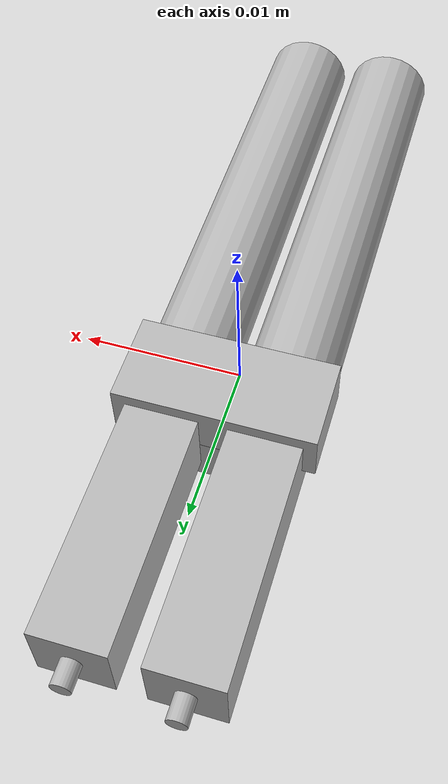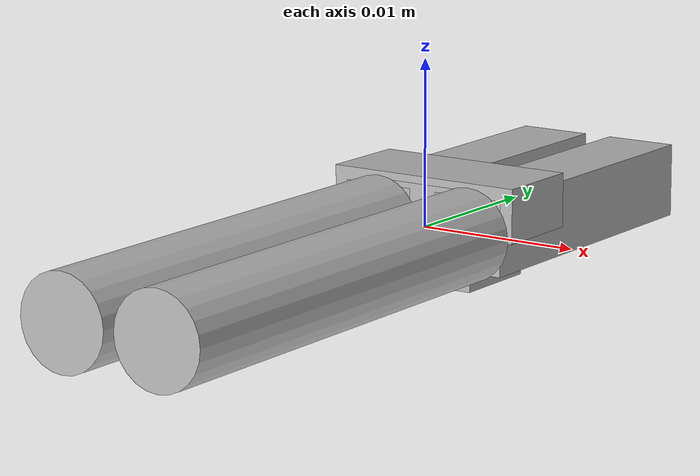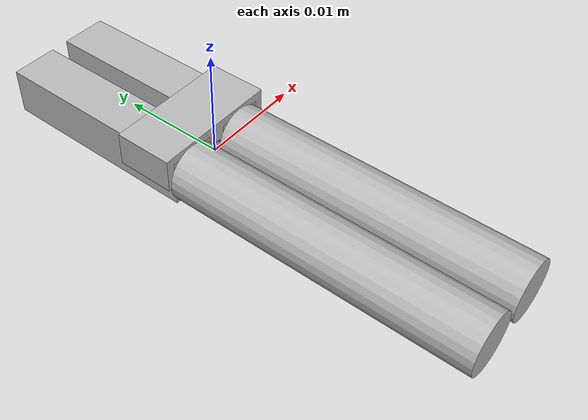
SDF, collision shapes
<?xml version="1.0" ?>
<sdf version="1.9">
  <model name="LC Plug">
    <link name="lc_plug_link">
      <inertial auto="true">
        <mass>0.010</mass>
      </inertial>
      <visual name="lc_plug_visual">
        <geometry>
          <mesh>
            <uri>lc_plug_visual.glb</uri>
          </mesh>
        </geometry>
      </visual>
      <collision name="cube_collider_box.003">
        <pose>0.003125 0.0097 0.0 -1.570796 1.570796 0.0</pose>
        <geometry>
          <box>
            <size>0.0045 0.0045 0.02</size>
          </box>
        </geometry>
      </collision>
      <collision name="cube_collider_box.002">
        <pose>-0.003125 0.0097 -0.0 -1.570796 1.570796 0.0</pose>
        <geometry>
          <box>
            <size>0.0045 0.0045 0.02</size>
          </box>
        </geometry>
      </collision>
      <collision name="cube001_collider_box.003">
        <pose>-0.0 0.002503 0.001434 -0.0 3.141593 -0.0</pose>
        <geometry>
          <box>
            <size>0.012353 0.0056 0.00325</size>
          </box>
        </geometry>
      </collision>
      <collision name="cube001_collider_box.002">
        <pose>-0.0 0.002503 -0.000413 -0.0 3.141593 -0.0</pose>
        <geometry>
          <box>
            <size>0.00665 0.0056 0.006032</size>
          </box>
        </geometry>
      </collision>
      <collision name="cylinder001_collider_cylinder.001">
        <pose>0.003125 0.0197 0.0 1.570796 0.0 0.0</pose>
        <geometry>
          <cylinder>
            <radius>0.000625</radius>
            <length>0.003004</length>
          </cylinder>
        </geometry>
      </collision>
      <collision name="cylinder_collider_cylinder.001">
        <pose>-0.003125 0.0197 0.0 1.570796 0.0 0.0</pose>
        <geometry>
          <cylinder>
            <radius>0.000625</radius>
            <length>0.003004</length>
          </cylinder>
        </geometry>
      </collision>
      <collision name="1af02-003-ma2_collider_cylinder">
        <pose>0.003125 -0.014628 -0.0 -1.570796 -0.0 -0.0</pose>
        <geometry>
          <cylinder>
            <radius>0.002794</radius>
            <length>0.028702</length>
          </cylinder>
        </geometry>
      </collision>
      <collision name="1af02-003-ma2001_collider_cylinder">
        <pose>-0.003125 -0.014628 -0.0 -1.570796 -0.0 -0.0</pose>
        <geometry>
          <cylinder>
            <radius>0.002794</radius>
            <length>0.028702</length>
          </cylinder>
        </geometry>
      </collision>
    </link>
  </model>
</sdf>
